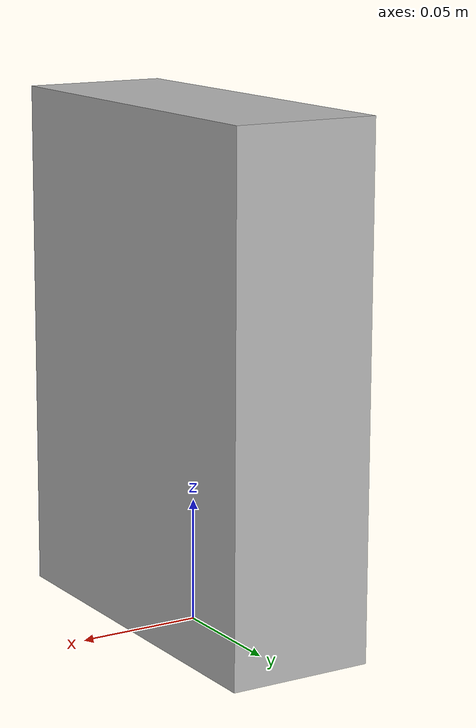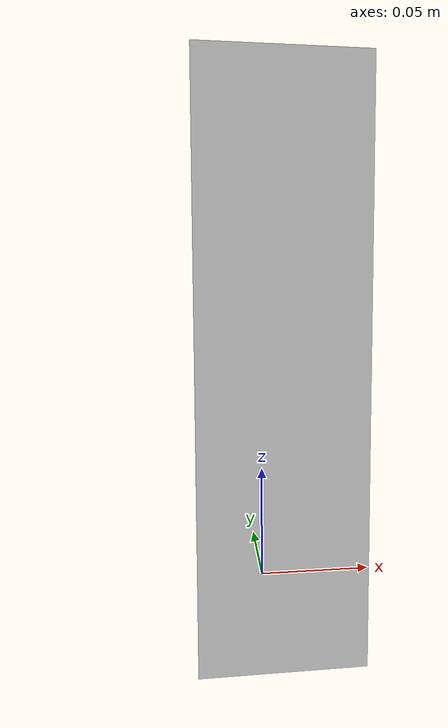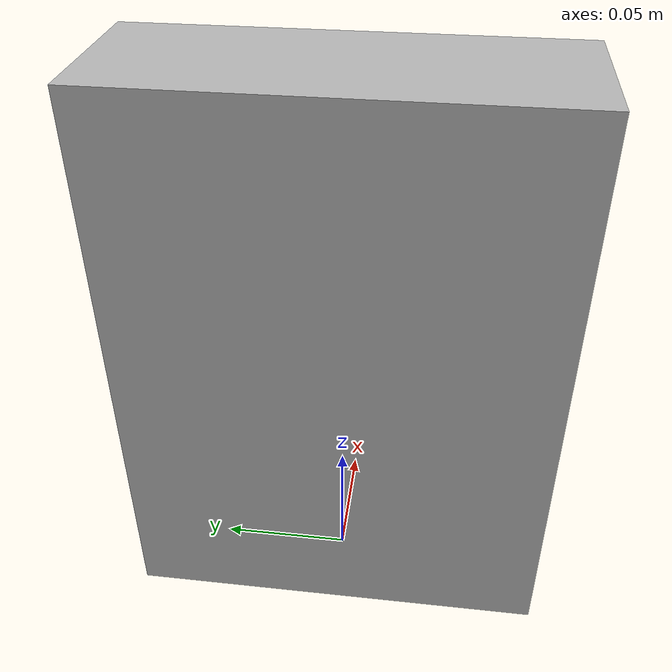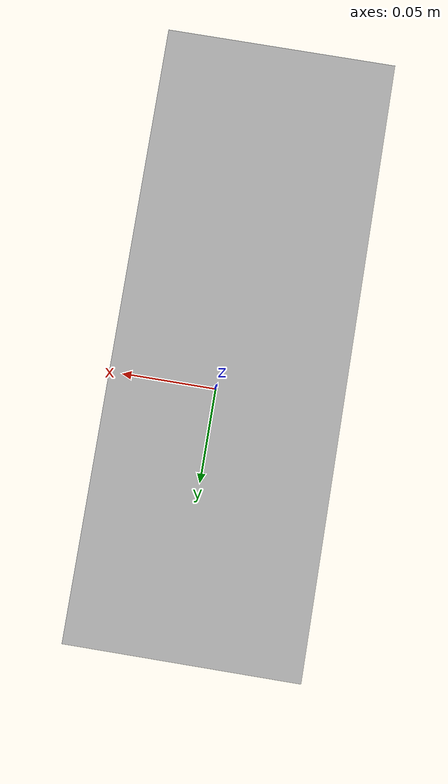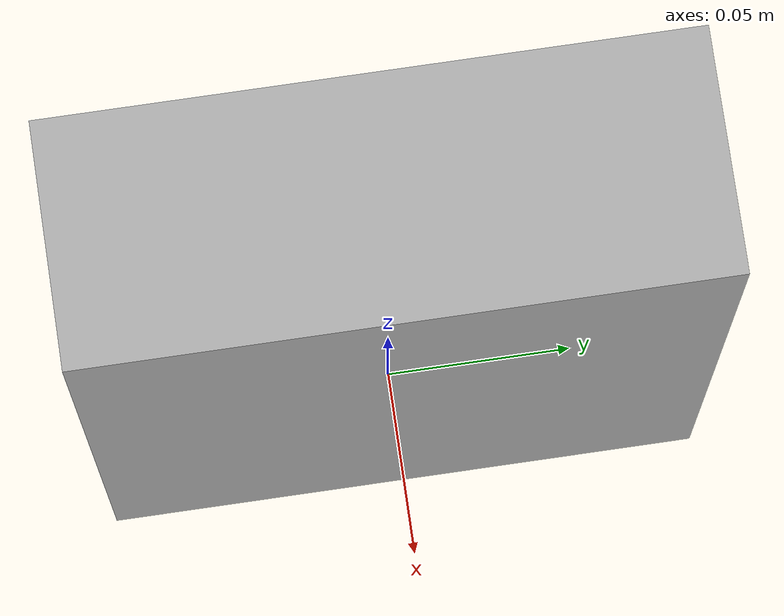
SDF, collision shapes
<?xml version="1.0"?>
<sdf version='1.6'>
<model name="cracker_box">
  <link name="base_link_cracker">
    <inertial>
      <pose frame=''>0 0 0.105 0 0 0 </pose>
      <mass>0.411</mass>
        <inertia>
          <ixx>0.002365442</ixx>
          <ixy>0</ixy>
          <ixz>0</ixz>
          <iyy>0.001633725</iyy>
          <iyz>0</iyz>
          <izz>0.000978317</izz>
        </inertia>
    </inertial>
    <visual name='base_link_cracker'>
      <pose frame=''>0 0 0.105 0 0 0</pose>
      <geometry>
        <mesh>
          <uri>textures/cracker_box_textured.obj</uri>
        </mesh>
      </geometry>
    </visual>

    <collision name='cracker_box_collision'>
      <pose>0 0 0.105 0 0 0</pose>
      <geometry>
        <box>
          <size>0.059 0.157 0.209</size>
        </box>
      </geometry>
      <material>
        <diffuse>0 1 0 1.0</diffuse>
      </material>
    </collision>

    <collision name='point_collision1'>
      <pose>0.03 0.079 0 0 0 0</pose>
      <geometry>
        <sphere><radius>1e-7</radius></sphere>
      </geometry>
    </collision>

    <collision name='point_collision2'>
      <pose>0.03 -0.079 0 0 0 0</pose>
      <geometry>
        <sphere><radius>1e-7</radius></sphere>
      </geometry>
    </collision>

    <collision name='point_collision3'>
      <pose>-0.03 0.079 0 0 0 0</pose>
      <geometry>
        <sphere><radius>1e-7</radius></sphere>
      </geometry>
    </collision>

    <collision name='point_collision4'>
      <pose>-0.03 -0.079 0 0 0 0</pose>
      <geometry>
        <sphere><radius>1e-7</radius></sphere>
      </geometry>
    </collision>

    <collision name='point_collision5'>
      <pose>0.03 0.079 0.21 0 0 0</pose>
      <geometry>
        <sphere><radius>1e-7</radius></sphere>
      </geometry>
    </collision>

    <collision name='point_collision6'>
      <pose>0.03 -0.079 0.21 0 0 0</pose>
      <geometry>
        <sphere><radius>1e-7</radius></sphere>
      </geometry>
    </collision>

    <collision name='point_collision7'>
      <pose>-0.03 0.079 0.21 0 0 0</pose>
      <geometry>
        <sphere><radius>1e-7</radius></sphere>
      </geometry>
    </collision>

    <collision name='point_collision8'>
      <pose>-0.03 -0.079 0.21 0 0 0</pose>
      <geometry>
        <sphere><radius>1e-7</radius></sphere>
      </geometry>
    </collision>

   </link>
</model>
</sdf>
